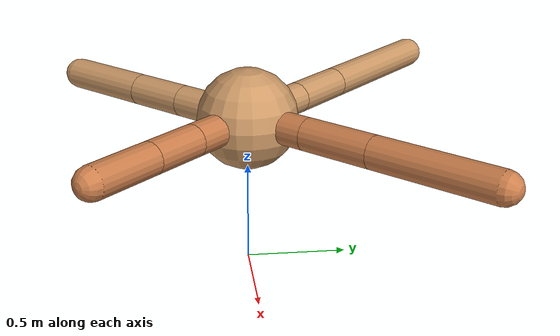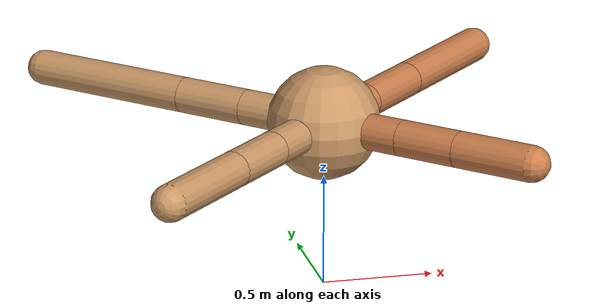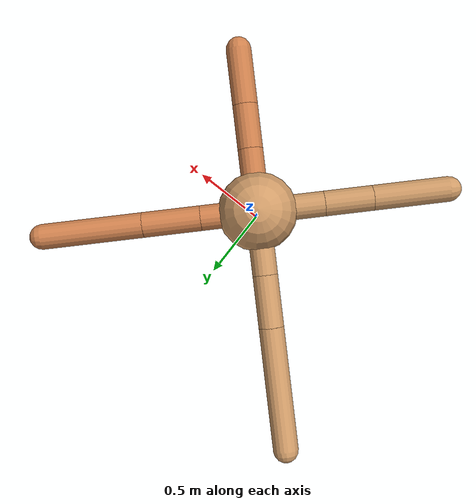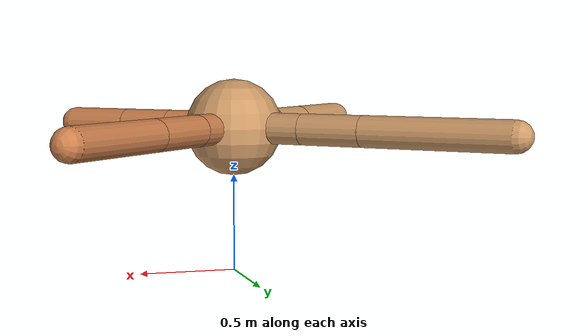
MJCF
<mujoco model="ant">
  <compiler angle="degree" coordinate="local" inertiafromgeom="true" />
  <option integrator="RK4" timestep="0.01" />
  <custom>
    <numeric data="0.0 0.0 0.55 1.0 0.0 0.0 0.0 0.0 1.0 0.0 -1.0 0.0 -1.0 0.0 1.0" name="init_qpos" />
  </custom>
  <default>
    <joint armature="1" damping="1" limited="true" />
    <geom conaffinity="0" condim="3" density="5.0" friction="1.5 0.1 0.1" margin="0.01" rgba="0.8 0.6 0.4 1" />
  </default>
  <worldbody>
    <body name="torso" pos="0 0 0.75">
      <geom name="torso_geom" pos="0 0 0" size="0.25" type="sphere" />

      <body name="front_left_leg" pos="0 0 0">
        <geom fromto="0.0 0.0 0.0 0.25300347272381185 0.25300347272381185 0.0" name="aux_1_geom" size="0.08" type="capsule" rgba=".8 .5 .3 1" />
        <body name="aux_1" pos="0.25300347272381185 0.25300347272381185 0.0">
          <joint axis="0 0 1" name="hip_1" pos="0.0 0.0 0.0" range="-40 40" type="hinge" />
          <geom fromto="0.0 0.0 0.0 0.2572547376129371 0.2572547376129371 0.0" name="left_leg_geom" size="0.08" type="capsule" rgba=".8 .5 .3 1" />
          <body pos="0.2572547376129371 0.2572547376129371 0.0" name="front_left_foot">
            <joint axis="-1 1 0" name="ankle_1" pos="0.0 0.0 0.0" range="30 100" type="hinge" />
            <geom fromto="0.0 0.0 0.0 0.4476032378699733 0.4476032378699733 0.0" name="left_ankle_geom" size="0.08" type="capsule" rgba=".8 .5 .3 1" />
          </body>
        </body>
      </body>
      <body name="front_right_leg" pos="0 0 0">
        <geom fromto="0.0 0.0 0.0 -0.28320033750610557 0.28320033750610557 0.0" name="aux_2_geom" size="0.08" type="capsule" />
        <body name="aux_2" pos="-0.28320033750610557 0.28320033750610557 0.0">
          <joint axis="0 0 1" name="hip_2" pos="0.0 0.0 0.0" range="-40 40" type="hinge" />
          <geom fromto="0.0 0.0 0.0 -0.23297432575281857 0.23297432575281857 0.0" name="right_leg_geom" size="0.08" type="capsule" />
          <body pos="-0.23297432575281857 0.23297432575281857 0.0" name="front_right_foot">
            <joint axis="1 1 0" name="ankle_2" pos="0.0 0.0 0.0" range="-100 -30" type="hinge" />
            <geom fromto="0.0 0.0 0.0 -0.5463179036310584 0.5463179036310584 0.0" name="right_ankle_geom" size="0.08" type="capsule" />
          </body>
        </body>
      </body>
      <body name="left_back_leg" pos="0 0 0">
        <geom fromto="0.0 0.0 0.0 -0.2964349278144717 -0.2964349278144717 0.0" name="aux_3_geom" size="0.08" type="capsule" />
        <body name="aux_3" pos="-0.2964349278144717 -0.2964349278144717 0.0">
          <joint axis="0 0 1" name="hip_3" pos="0.0 0.0 0.0" range="-40 40" type="hinge" />
          <geom fromto="0.0 0.0 0.0 -0.21573847189839934 -0.21573847189839934 0.0" name="back_leg_geom" size="0.08" type="capsule" />
          <body pos="-0.21573847189839934 -0.21573847189839934 0.0" name="left_back_foot">
            <joint axis="-1 1 0" name="ankle_3" pos="0.0 0.0 0.0" range="-100 -30" type="hinge" />
            <geom fromto="0.0 0.0 0.0 -0.3374658113797725 -0.3374658113797725 0.0" name="third_ankle_geom" size="0.08" type="capsule" />
          </body>
        </body>
      </body>
      <body name="right_back_leg" pos="0 0 0">
        <geom fromto="0.0 0.0 0.0 0.27743436778653224 -0.27743436778653224 0.0" name="aux_4_geom" size="0.08" type="capsule" rgba=".8 .5 .3 1" />
        <body name="aux_4" pos="0.27743436778653224 -0.27743436778653224 0.0">
          <joint axis="0 0 1" name="hip_4" pos="0.0 0.0 0.0" range="-40 40" type="hinge" />
          <geom fromto="0.0 0.0 0.0 0.1962025803826965 -0.1962025803826965 0.0" name="rightback_leg_geom" size="0.08" type="capsule" rgba=".8 .5 .3 1" />
          <body pos="0.1962025803826965 -0.1962025803826965 0.0" name="right_back_foot">
            <joint axis="1 1 0" name="ankle_4" pos="0.0 0.0 0.0" range="30 100" type="hinge" />
            <geom fromto="0.0 0.0 0.0 0.2475437734364043 -0.2475437734364043 0.0" name="fourth_ankle_geom" size="0.08" type="capsule" rgba=".8 .5 .3 1" />
          </body>
        </body>
      </body>
    </body>
  </worldbody>
  <actuator>
    <motor ctrllimited="true" ctrlrange="-1.0 1.0" joint="hip_4" gear="150" />
    <motor ctrllimited="true" ctrlrange="-1.0 1.0" joint="ankle_4" gear="150" />
    <motor ctrllimited="true" ctrlrange="-1.0 1.0" joint="hip_1" gear="150" />
    <motor ctrllimited="true" ctrlrange="-1.0 1.0" joint="ankle_1" gear="150" />
    <motor ctrllimited="true" ctrlrange="-1.0 1.0" joint="hip_2" gear="150" />
    <motor ctrllimited="true" ctrlrange="-1.0 1.0" joint="ankle_2" gear="150" />
    <motor ctrllimited="true" ctrlrange="-1.0 1.0" joint="hip_3" gear="150" />
    <motor ctrllimited="true" ctrlrange="-1.0 1.0" joint="ankle_3" gear="150" />
  </actuator>
</mujoco>
